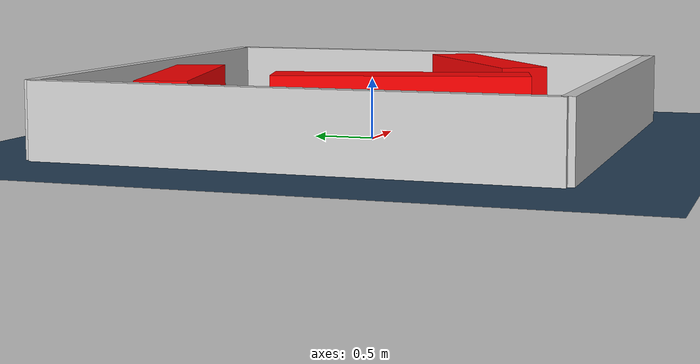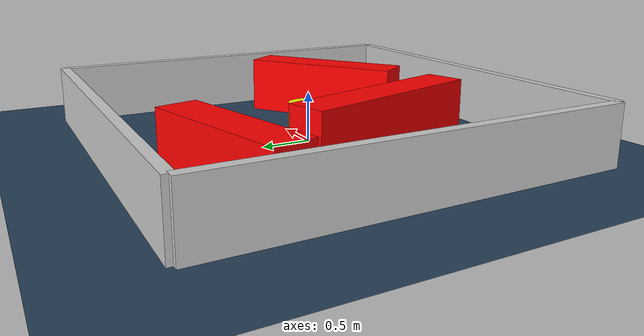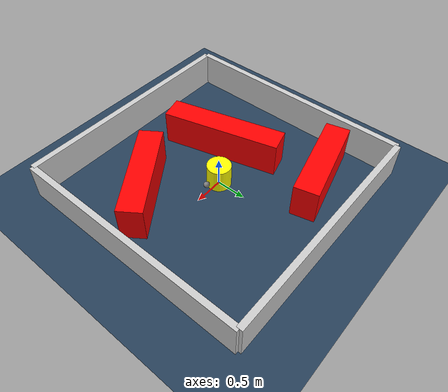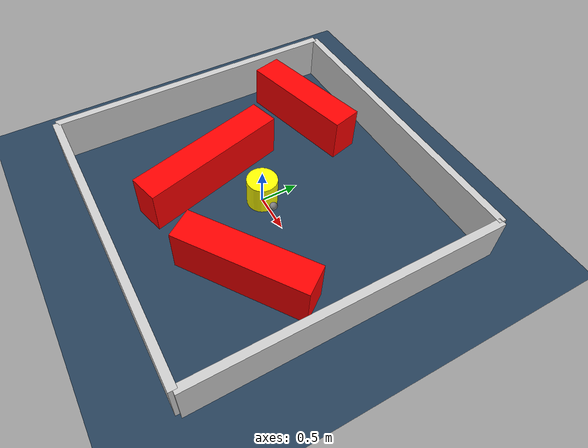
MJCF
<?xml version="1.0" ?>
<mujoco model="generated_environment">
  <option timestep="0.01" integrator="RK4" cone="elliptic"/>
  <default>
    <geom density="1"/>
  </default>
  <asset>
    <texture builtin="gradient" height="3072" rgb1="0.3 0.5 0.7" rgb2="0 0 0" type="skybox" width="512"/>
    <texture builtin="checker" height="300" mark="edge" markrgb="0.8 0.8 0.8" name="groundplane" rgb1="0.2 0.3 0.4" rgb2="0.1 0.2 0.3" type="2d" width="300"/>
    <material name="groundplane" reflectance="0.2" texrepeat="5 5" texture="groundplane" texuniform="true"/>
    <material name="robot" rgba="0.0 1.0 0.0 1"/>
  </asset>
  <worldbody>
    <light dir="0 0 -1" directional="true" pos="0 0 1.5"/>
    <geom condim="4" friction="1.0 0.005 0.001" material="groundplane" name="floor" size="0 0 0.05" type="plane"/>
    <body name="walls">
      <geom name="wall_1" condim="4" pos="-2.0 0.0 0.3" rgba="0.800000011920929 0.800000011920929 0.800000011920929 1.0" size="0.05 2.0 0.3" type="box"/>
      <geom name="wall_2" condim="4" pos="2.0 0.0 0.3" rgba="0.800000011920929 0.800000011920929 0.800000011920929 1.0" size="0.05 2.0 0.3" type="box"/>
      <geom name="wall_3" condim="4" pos="0.0 -2.0 0.3" rgba="0.800000011920929 0.800000011920929 0.800000011920929 1.0" size="2.0 0.05 0.3" type="box"/>
      <geom name="wall_4" condim="4" pos="0.0 2.0 0.3" rgba="0.800000011920929 0.800000011920929 0.800000011920929 1.0" size="2.0 0.05 0.3" type="box"/>
    </body>
    <body name="robot">
      <joint name="joint_x" type="slide" pos="0 0 0" axis="1 0 0"/>
      <joint name="joint_y" type="slide" pos="0 0 0" axis="0 1 0"/>
      <geom name="robot" type="sphere" pos="0.3 0.0 0.2" size="0.05" mass="5." friction="1.0 0.005 0.0001" condim="4" rgba="0.5 0.5 0.5 1.0"/>
      <site name="sensor_ball"/>
    </body>
    <body name="obstacle_movable_1">
      <geom name="obstacle_movable_1" condim="4" pos="0.0 0.0 0.2" euler="0 0 0.0" friction="1.0 0.005 0.001" rgba="1.0 1.0 0.0 1.0" size="0.2 0.2 0.0" type="cylinder" mass="0.1"/>
      <joint type="free"/>
    </body>
    <body name="obstacle_2_static">
      <geom name="obstacle_2_static" condim="4" pos="0.962739918228082 -0.7295530841634594 0.3" euler="0 0 35.213277909688294" friction="1.0 0.005 0.001" rgba="1 0 0 1" size="0.8500705091704535 0.2 0.3" type="box"/>
    </body>
    <body name="obstacle_3_static">
      <geom name="obstacle_3_static" condim="4" pos="-1.0234347535128863 1.235585473930623 0.3" euler="0 0 13.96544524777369" friction="1.0 0.005 0.001" rgba="1 0 0 1" size="0.7906350595287863 0.2 0.3" type="box"/>
    </body>
    <body name="obstacle_4_static">
      <geom name="obstacle_4_static" condim="4" pos="-0.6465025408331713 -0.4416456913301494 0.3" euler="0 0 285.21974864724336" friction="1.0 0.005 0.001" rgba="1 0 0 1" size="0.9960098634636967 0.2 0.3" type="box"/>
    </body>
  </worldbody>
  <actuator>
    <motor name="actuator_x" joint="joint_x" gear="1" ctrlrange="-1 1"/>
    <motor name="actuator_y" joint="joint_y" gear="1" ctrlrange="-1 1"/>
  </actuator>
</mujoco>
